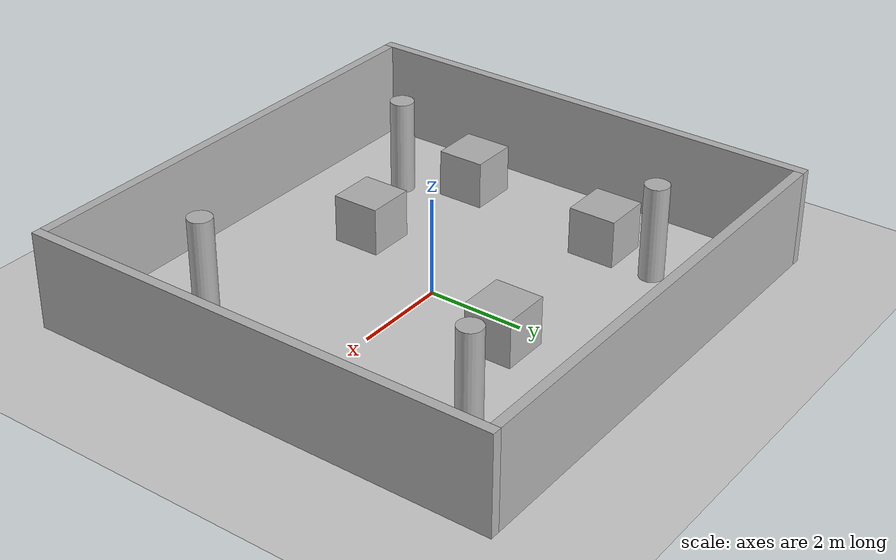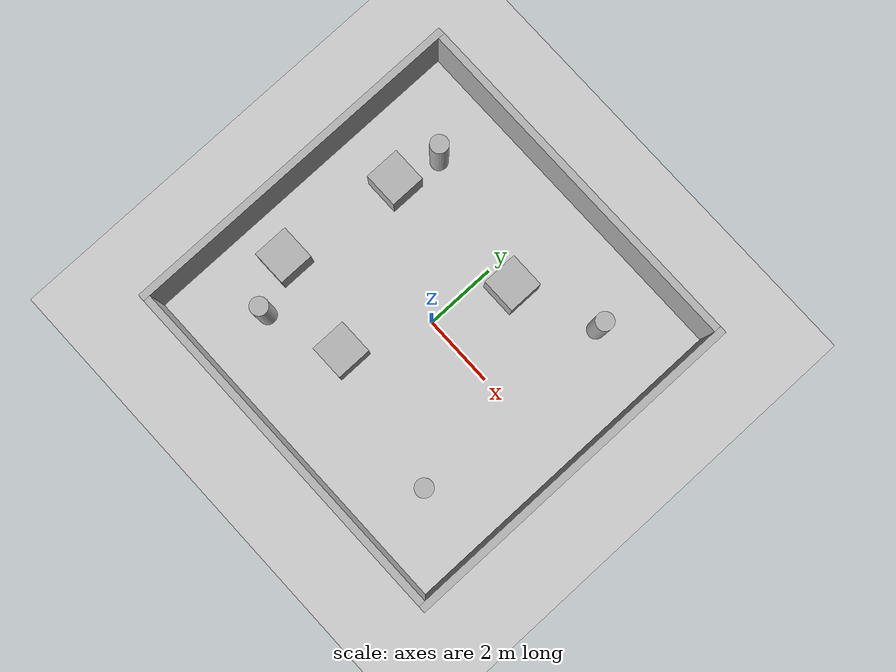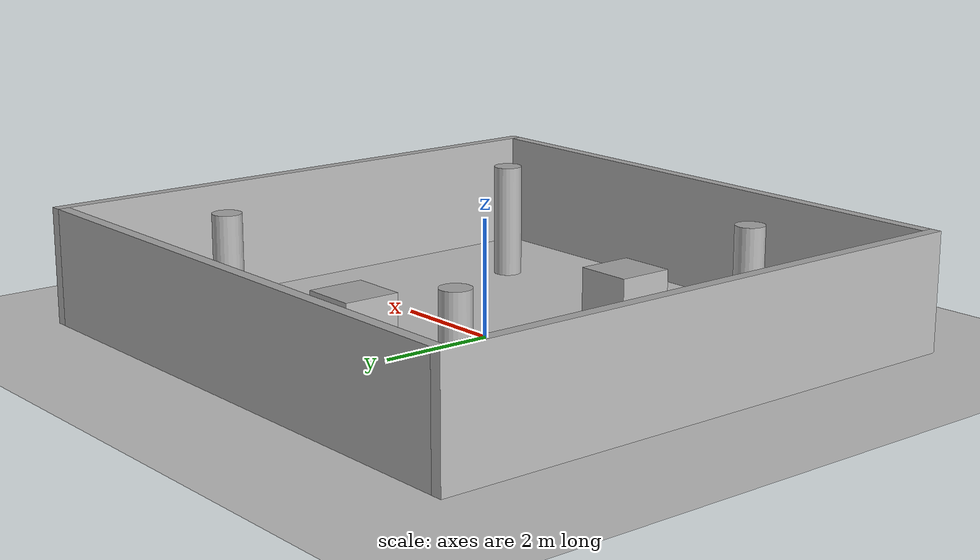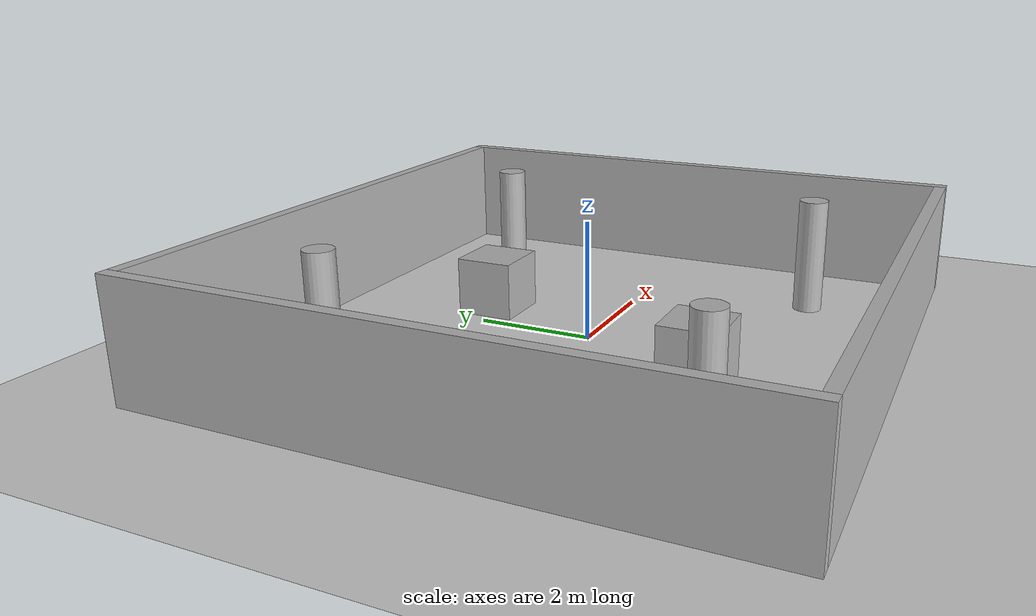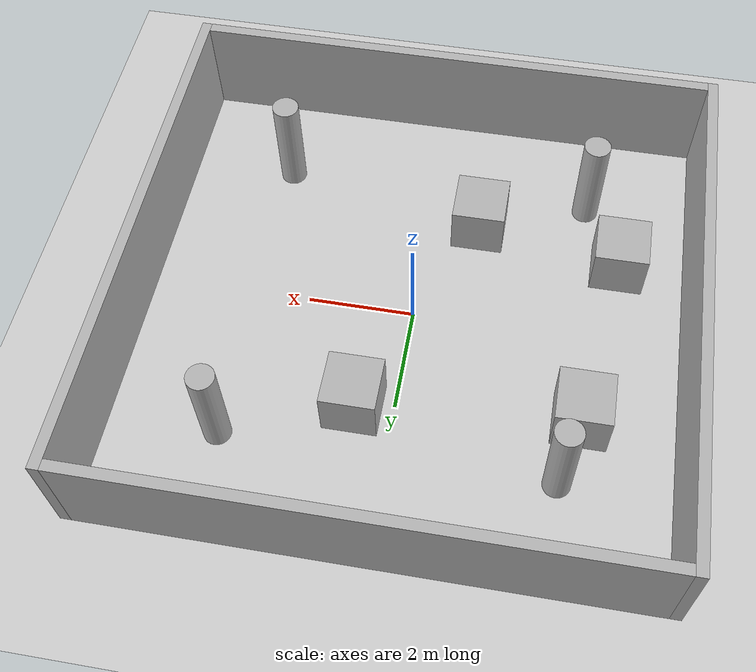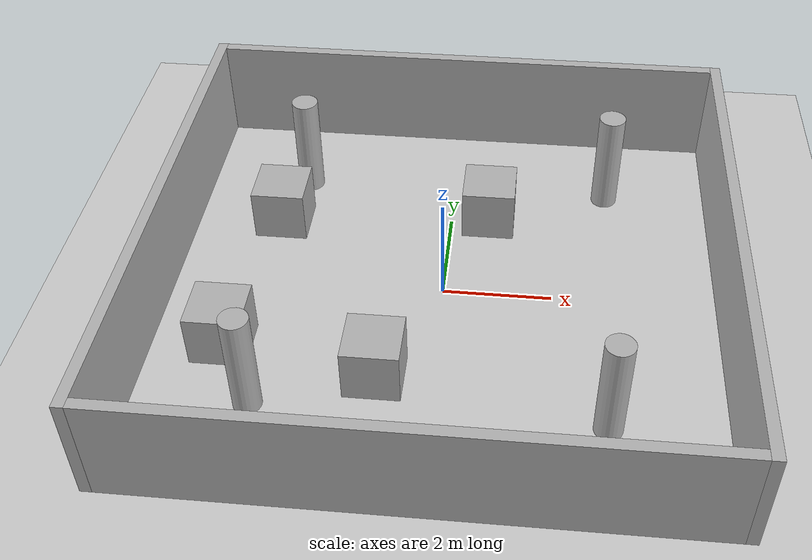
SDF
<sdf version='1.9'>
  <world name='testing'>
    <physics name='1ms' type='ignored'>
      <max_step_size>0.001</max_step_size>
      <real_time_factor>1</real_time_factor>
      <real_time_update_rate>1000</real_time_update_rate>
    </physics>
    <plugin name='gz::sim::systems::Physics' filename='gz-sim-physics-system'/>
    <plugin name='ignition::gazebo::systems::UserCommands' filename='libignition-gazebo-user-commands-system.so'/>
    <plugin name='ignition::gazebo::systems::SceneBroadcaster' filename='libignition-gazebo-scene-broadcaster-system.so'/>
    <plugin name='gz::sim::systems::Sensors' filename='gz-sim-sensors-system'>
      <render_engine>ogre2</render_engine>
    </plugin>
    <gravity>0 0 -9.8</gravity>
    <magnetic_field>6e-06 2.3e-05 -4.2e-05</magnetic_field>
    <atmosphere type='adiabatic'/>
    <scene>
      <ambient>0.4 0.4 0.4 1</ambient>
      <background>0.7 0.7 0.7 1</background>
      <shadows>true</shadows>
    </scene>
    <model name='ground_plane'>
      <static>true</static>
      <link name='link'>
        <collision name='collision'>
          <geometry>
            <plane>
              <normal>0 0 1</normal>
              <size>100 100</size>
            </plane>
          </geometry>
          <surface>
            <friction>
              <ode/>
            </friction>
            <bounce/>
            <contact/>
          </surface>
        </collision>
        <visual name='visual'>
          <geometry>
            <plane>
              <normal>0 0 1</normal>
              <size>100 100</size>
            </plane>
          </geometry>
          <material>
            <ambient>0.8 0.8 0.8 1</ambient>
            <diffuse>0.8 0.8 0.8 1</diffuse>
            <specular>0.8 0.8 0.8 1</specular>
          </material>
        </visual>
        <pose>0 0 0 0 -0 0</pose>
        <inertial>
          <pose>0 0 0 0 -0 0</pose>
          <mass>1</mass>
          <inertia>
            <ixx>1</ixx>
            <ixy>0</ixy>
            <ixz>0</ixz>
            <iyy>1</iyy>
            <iyz>0</iyz>
            <izz>1</izz>
          </inertia>
        </inertial>
        <enable_wind>false</enable_wind>
      </link>
      <pose>0 0 0 0 -0 0</pose>
      <self_collide>false</self_collide>
    </model>
    <model name='wall_1'>
      <pose>5.1 0 1 0 -0 0</pose>
      <link name='wall_1_link'>
        <inertial>
          <inertia>
            <ixx>0.16666</ixx>
            <ixy>0</ixy>
            <ixz>0</ixz>
            <iyy>0.16666</iyy>
            <iyz>0</iyz>
            <izz>0.16666</izz>
          </inertia>
          <mass>1</mass>
          <pose>0 0 0 0 -0 0</pose>
        </inertial>
        <collision name='wall_1_collision'>
          <geometry>
            <box>
              <size>0.2 10 2</size>
            </box>
          </geometry>
          <surface>
            <friction>
              <ode/>
            </friction>
            <bounce/>
            <contact/>
          </surface>
        </collision>
        <visual name='wall_1_visual'>
          <geometry>
            <box>
              <size>0.2 10 2</size>
            </box>
          </geometry>
          <material>
            <ambient>0.3 0.3 0.3 1</ambient>
            <diffuse>0.7 0.7 0.7 1</diffuse>
            <specular>1 1 1 1</specular>
          </material>
        </visual>
        <pose>0 0 0 0 -0 0</pose>
        <enable_wind>false</enable_wind>
      </link>
      <static>false</static>
      <self_collide>false</self_collide>
    </model>
    <model name='wall_2'>
      <pose>0 4.9 1 0 -0 0</pose>
      <link name='wall_2_link'>
        <inertial>
          <inertia>
            <ixx>0.16666</ixx>
            <ixy>0</ixy>
            <ixz>0</ixz>
            <iyy>0.16666</iyy>
            <iyz>0</iyz>
            <izz>0.16666</izz>
          </inertia>
          <mass>1</mass>
          <pose>0 0 0 0 -0 0</pose>
        </inertial>
        <collision name='wall_2_collision'>
          <geometry>
            <box>
              <size>10 0.2 2</size>
            </box>
          </geometry>
          <surface>
            <friction>
              <ode/>
            </friction>
            <bounce/>
            <contact/>
          </surface>
        </collision>
        <visual name='wall_2_visual'>
          <geometry>
            <box>
              <size>10 0.2 2</size>
            </box>
          </geometry>
          <material>
            <ambient>0.3 0.3 0.3 1</ambient>
            <diffuse>0.7 0.7 0.7 1</diffuse>
            <specular>1 1 1 1</specular>
          </material>
        </visual>
        <pose>0 0 0 0 -0 0</pose>
        <enable_wind>false</enable_wind>
      </link>
      <static>false</static>
      <self_collide>false</self_collide>
    </model>
    <model name='wall_3'>
      <pose>0 -4.9 1 0 -0 0</pose>
      <link name='wall_3_link'>
        <inertial>
          <inertia>
            <ixx>0.16666</ixx>
            <ixy>0</ixy>
            <ixz>0</ixz>
            <iyy>0.16666</iyy>
            <iyz>0</iyz>
            <izz>0.16666</izz>
          </inertia>
          <mass>1</mass>
          <pose>0 0 0 0 -0 0</pose>
        </inertial>
        <collision name='wall_3_collision'>
          <geometry>
            <box>
              <size>10 0.2 2</size>
            </box>
          </geometry>
          <surface>
            <friction>
              <ode/>
            </friction>
            <bounce/>
            <contact/>
          </surface>
        </collision>
        <visual name='wall_3_visual'>
          <geometry>
            <box>
              <size>10 0.2 2</size>
            </box>
          </geometry>
          <material>
            <ambient>0.3 0.3 0.3 1</ambient>
            <diffuse>0.7 0.7 0.7 1</diffuse>
            <specular>1 1 1 1</specular>
          </material>
        </visual>
        <pose>0 0 0 0 -0 0</pose>
        <enable_wind>false</enable_wind>
      </link>
      <static>false</static>
      <self_collide>false</self_collide>
    </model>
    <model name='wall_4'>
      <pose>-5.1 0 1 0 -0 0</pose>
      <link name='wall_4_link'>
        <inertial>
          <inertia>
            <ixx>0.16666</ixx>
            <ixy>0</ixy>
            <ixz>0</ixz>
            <iyy>0.16666</iyy>
            <iyz>0</iyz>
            <izz>0.16666</izz>
          </inertia>
          <mass>1</mass>
          <pose>0 0 0 0 -0 0</pose>
        </inertial>
        <collision name='wall_4_collision'>
          <geometry>
            <box>
              <size>0.2 10 2</size>
            </box>
          </geometry>
          <surface>
            <friction>
              <ode/>
            </friction>
            <bounce/>
            <contact/>
          </surface>
        </collision>
        <visual name='wall_4_visual'>
          <geometry>
            <box>
              <size>0.2 10 2</size>
            </box>
          </geometry>
          <material>
            <ambient>0.3 0.3 0.3 1</ambient>
            <diffuse>0.7 0.7 0.7 1</diffuse>
            <specular>1 1 1 1</specular>
          </material>
        </visual>
        <pose>0 0 0 0 -0 0</pose>
        <enable_wind>false</enable_wind>
      </link>
      <static>false</static>
      <self_collide>false</self_collide>
    </model>

    <model name='box'>
      <pose>0.719615 2.11052 0.5 0 -0 0</pose>
      <link name='box_link'>
        <inertial>
          <inertia>
            <ixx>0.16666</ixx>
            <ixy>0</ixy>
            <ixz>0</ixz>
            <iyy>0.16666</iyy>
            <iyz>0</iyz>
            <izz>0.16666</izz>
          </inertia>
          <mass>1</mass>
          <pose>0 0 0 0 -0 0</pose>
        </inertial>
        <collision name='box_collision'>
          <geometry>
            <box>
              <size>1 1 1</size>
            </box>
          </geometry>
          <surface>
            <friction>
              <ode/>
            </friction>
            <bounce/>
            <contact/>
          </surface>
        </collision>
        <visual name='box_visual'>
          <geometry>
            <box>
              <size>1 1 1</size>
            </box>
          </geometry>
          <material>
            <ambient>0.3 0.3 0.3 1</ambient>
            <diffuse>0.7 0.7 0.7 1</diffuse>
            <specular>1 1 1 1</specular>
          </material>
        </visual>
        <pose>0 0 0 0 -0 0</pose>
        <enable_wind>false</enable_wind>
      </link>
      <static>false</static>
      <self_collide>false</self_collide>
    </model>

    <model name='box_0'>
      <pose>-0.959736 -2.21988 0.5 0 -0 0</pose>
      <link name='box_link'>
        <inertial>
          <inertia>
            <ixx>0.16666</ixx>
            <ixy>0</ixy>
            <ixz>0</ixz>
            <iyy>0.16666</iyy>
            <iyz>0</iyz>
            <izz>0.16666</izz>
          </inertia>
          <mass>1</mass>
          <pose>0 0 0 0 -0 0</pose>
        </inertial>
        <collision name='box_collision'>
          <geometry>
            <box>
              <size>1 1 1</size>
            </box>
          </geometry>
          <surface>
            <friction>
              <ode/>
            </friction>
            <bounce/>
            <contact/>
          </surface>
        </collision>
        <visual name='box_visual'>
          <geometry>
            <box>
              <size>1 1 1</size>
            </box>
          </geometry>
          <material>
            <ambient>0.3 0.3 0.3 1</ambient>
            <diffuse>0.7 0.7 0.7 1</diffuse>
            <specular>1 1 1 1</specular>
          </material>
        </visual>
        <pose>0 0 0 0 -0 0</pose>
        <enable_wind>false</enable_wind>
      </link>
      <static>false</static>
      <self_collide>false</self_collide>
    </model>

    <model name='box_1'>
      <pose>-3.29757 1.7389 0.5 0 -0 0</pose>
      <link name='box_link'>
        <inertial>
          <inertia>
            <ixx>0.16666</ixx>
            <ixy>0</ixy>
            <ixz>0</ixz>
            <iyy>0.16666</iyy>
            <iyz>0</iyz>
            <izz>0.16666</izz>
          </inertia>
          <mass>1</mass>
          <pose>0 0 0 0 -0 0</pose>
        </inertial>
        <collision name='box_collision'>
          <geometry>
            <box>
              <size>1 1 1</size>
            </box>
          </geometry>
          <surface>
            <friction>
              <ode/>
            </friction>
            <bounce/>
            <contact/>
          </surface>
        </collision>
        <visual name='box_visual'>
          <geometry>
            <box>
              <size>1 1 1</size>
            </box>
          </geometry>
          <material>
            <ambient>0.3 0.3 0.3 1</ambient>
            <diffuse>0.7 0.7 0.7 1</diffuse>
            <specular>1 1 1 1</specular>
          </material>
        </visual>
        <pose>0 0 0 0 -0 0</pose>
        <enable_wind>false</enable_wind>
      </link>
      <static>false</static>
      <self_collide>false</self_collide>
    </model>

    <model name='box_2'>
      <pose>-3.72338 -1.68882 0.5 0 -0 0</pose>
      <link name='box_link'>
        <inertial>
          <inertia>
            <ixx>0.16666</ixx>
            <ixy>0</ixy>
            <ixz>0</ixz>
            <iyy>0.16666</iyy>
            <iyz>0</iyz>
            <izz>0.16666</izz>
          </inertia>
          <mass>1</mass>
          <pose>0 0 0 0 -0 0</pose>
        </inertial>
        <collision name='box_collision'>
          <geometry>
            <box>
              <size>1 1 1</size>
            </box>
          </geometry>
          <surface>
            <friction>
              <ode/>
            </friction>
            <bounce/>
            <contact/>
          </surface>
        </collision>
        <visual name='box_visual'>
          <geometry>
            <box>
              <size>1 1 1</size>
            </box>
          </geometry>
          <material>
            <ambient>0.3 0.3 0.3 1</ambient>
            <diffuse>0.7 0.7 0.7 1</diffuse>
            <specular>1 1 1 1</specular>
          </material>
        </visual>
        <pose>0 0 0 0 -0 0</pose>
        <enable_wind>false</enable_wind>
      </link>
      <static>false</static>
      <self_collide>false</self_collide>
    </model>

    <model name='pillar_1'>
      <pose>3 -3 1 0 -0 0</pose>
      <link name='pillar_1_link'>
        <inertial>
          <inertia>
            <ixx>0.14580000000000001</ixx>
            <ixy>0</ixy>
            <ixz>0</ixz>
            <iyy>0.14580000000000001</iyy>
            <iyz>0</iyz>
            <izz>0.125</izz>
          </inertia>
          <mass>1</mass>
          <pose>0 0 0 0 -0 0</pose>
        </inertial>
        <collision name='pillar_1_collision'>
          <geometry>
            <cylinder>
              <radius>0.25</radius>
              <length>2</length>
            </cylinder>
          </geometry>
          <surface>
            <friction>
              <ode/>
            </friction>
            <bounce/>
            <contact/>
          </surface>
        </collision>
        <visual name='pillar_1_visual'>
          <geometry>
            <cylinder>
              <radius>0.25</radius>
              <length>2</length>
            </cylinder>
          </geometry>
          <material>
            <ambient>0.3 0.3 0.3 1</ambient>
            <diffuse>0.7 0.7 0.7 1</diffuse>
            <specular>1 1 1 1</specular>
          </material>
        </visual>
        <pose>0 0 0 0 -0 0</pose>
        <enable_wind>false</enable_wind>
      </link>
      <static>false</static>
      <self_collide>false</self_collide>
    </model>

    <model name='pillar_2'>
      <pose>3 3 1 0 -0 0</pose>
      <link name='pillar_2_link'>
        <inertial>
          <inertia>
            <ixx>0.14580000000000001</ixx>
            <ixy>0</ixy>
            <ixz>0</ixz>
            <iyy>0.14580000000000001</iyy>
            <iyz>0</iyz>
            <izz>0.125</izz>
          </inertia>
          <mass>1</mass>
          <pose>0 0 0 0 -0 0</pose>
        </inertial>
        <collision name='pillar_2_collision'>
          <geometry>
            <cylinder>
              <radius>0.25</radius>
              <length>2</length>
            </cylinder>
          </geometry>
          <surface>
            <friction>
              <ode/>
            </friction>
            <bounce/>
            <contact/>
          </surface>
        </collision>
        <visual name='pillar_2_visual'>
          <geometry>
            <cylinder>
              <radius>0.25</radius>
              <length>2</length>
            </cylinder>
          </geometry>
          <material>
            <ambient>0.3 0.3 0.3 1</ambient>
            <diffuse>0.7 0.7 0.7 1</diffuse>
            <specular>1 1 1 1</specular>
          </material>
        </visual>
        <pose>0 0 0 0 -0 0</pose>
        <enable_wind>false</enable_wind>
      </link>
      <static>false</static>
      <self_collide>false</self_collide>
    </model>

    <model name='pillar_3'>
      <pose>-3 3 1 0 -0 0</pose>
      <link name='pillar_3_link'>
        <inertial>
          <inertia>
            <ixx>0.14580000000000001</ixx>
            <ixy>0</ixy>
            <ixz>0</ixz>
            <iyy>0.14580000000000001</iyy>
            <iyz>0</iyz>
            <izz>0.125</izz>
          </inertia>
          <mass>1</mass>
          <pose>0 0 0 0 -0 0</pose>
        </inertial>
        <collision name='pillar_3_collision'>
          <geometry>
            <cylinder>
              <radius>0.25</radius>
              <length>2</length>
            </cylinder>
          </geometry>
          <surface>
            <friction>
              <ode/>
            </friction>
            <bounce/>
            <contact/>
          </surface>
        </collision>
        <visual name='pillar_3_visual'>
          <geometry>
            <cylinder>
              <radius>0.25</radius>
              <length>2</length>
            </cylinder>
          </geometry>
          <material>
            <ambient>0.3 0.3 0.3 1</ambient>
            <diffuse>0.7 0.7 0.7 1</diffuse>
            <specular>1 1 1 1</specular>
          </material>
        </visual>
        <pose>0 0 0 0 -0 0</pose>
        <enable_wind>false</enable_wind>
      </link>
      <static>false</static>
      <self_collide>false</self_collide>
    </model>

    <model name='pillar_4'>
      <pose>-3 -3 1 0 -0 0</pose>
      <link name='pillar_4_link'>
        <inertial>
          <inertia>
            <ixx>0.14580000000000001</ixx>
            <ixy>0</ixy>
            <ixz>0</ixz>
            <iyy>0.14580000000000001</iyy>
            <iyz>0</iyz>
            <izz>0.125</izz>
          </inertia>
          <mass>1</mass>
          <pose>0 0 0 0 -0 0</pose>
        </inertial>
        <collision name='pillar_4_collision'>
          <geometry>
            <cylinder>
              <radius>0.25</radius>
              <length>2</length>
            </cylinder>
          </geometry>
          <surface>
            <friction>
              <ode/>
            </friction>
            <bounce/>
            <contact/>
          </surface>
        </collision>
        <visual name='pillar_4_visual'>
          <geometry>
            <cylinder>
              <radius>0.25</radius>
              <length>2</length>
            </cylinder>
          </geometry>
          <material>
            <ambient>0.3 0.3 0.3 1</ambient>
            <diffuse>0.7 0.7 0.7 1</diffuse>
            <specular>1 1 1 1</specular>
          </material>
        </visual>
        <pose>0 0 0 0 -0 0</pose>
        <enable_wind>false</enable_wind>
      </link>
      <static>false</static>
      <self_collide>false</self_collide>
    </model>
    <light name='sun' type='directional'>
      <pose>0 0 10 0 -0 0</pose>
      <cast_shadows>true</cast_shadows>
      <intensity>1</intensity>
      <direction>-0.5 0.1 -0.9</direction>
      <diffuse>0.8 0.8 0.8 1</diffuse>
      <specular>0.2 0.2 0.2 1</specular>
      <attenuation>
        <range>1000</range>
        <linear>0.01</linear>
        <constant>0.90000000000000002</constant>
        <quadratic>0.001</quadratic>
      </attenuation>
      <spot>
        <inner_angle>0</inner_angle>
        <outer_angle>0</outer_angle>
        <falloff>0</falloff>
      </spot>
    </light>
  </world>
</sdf>
